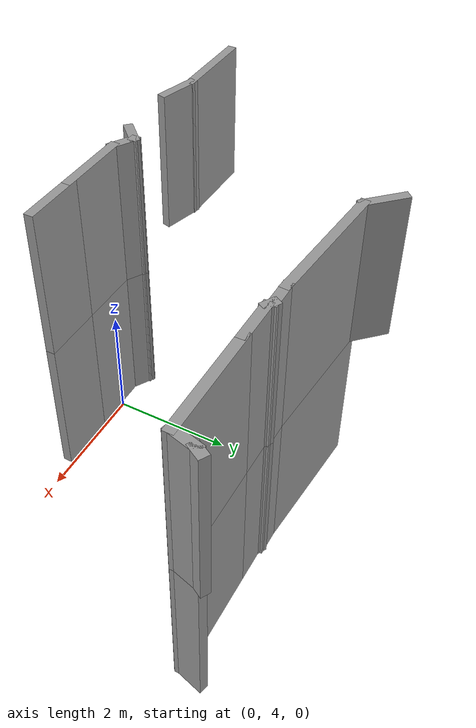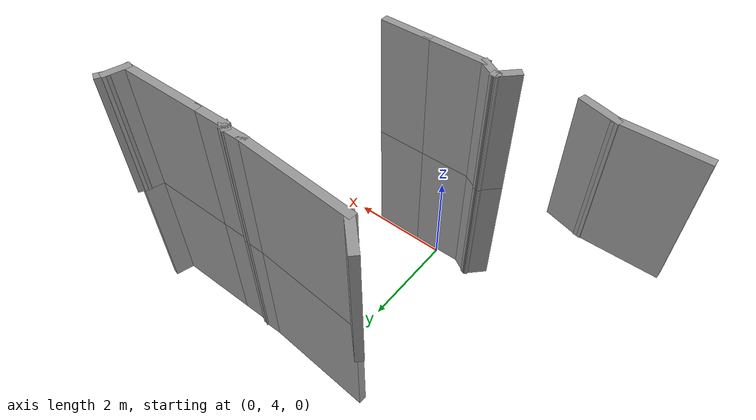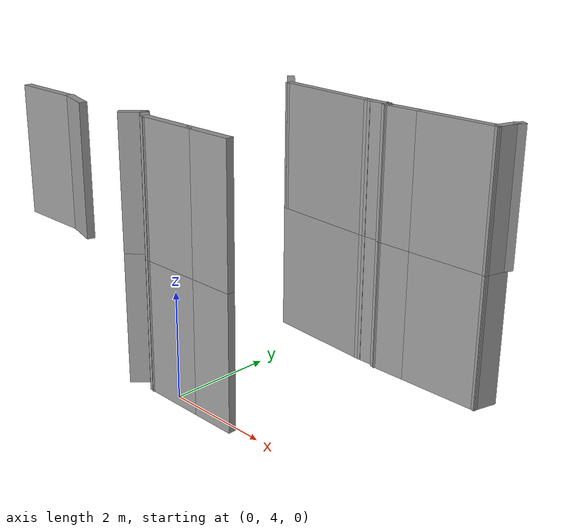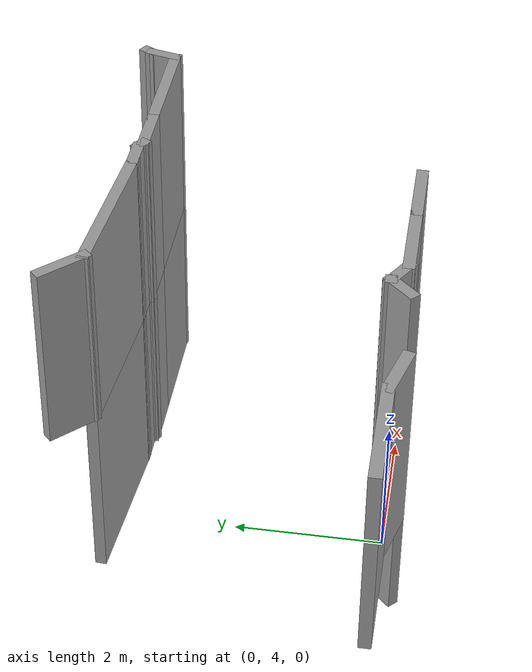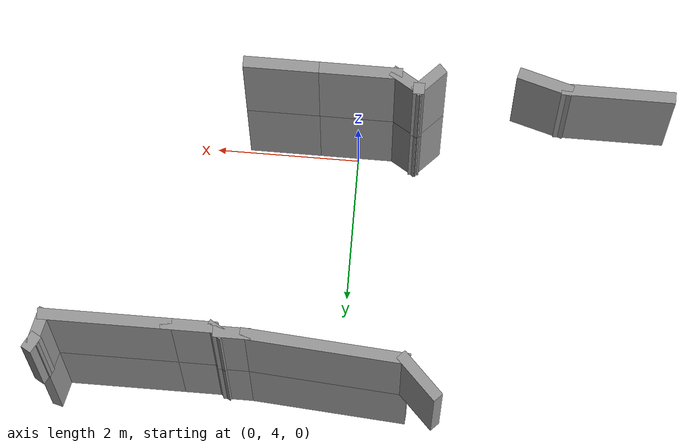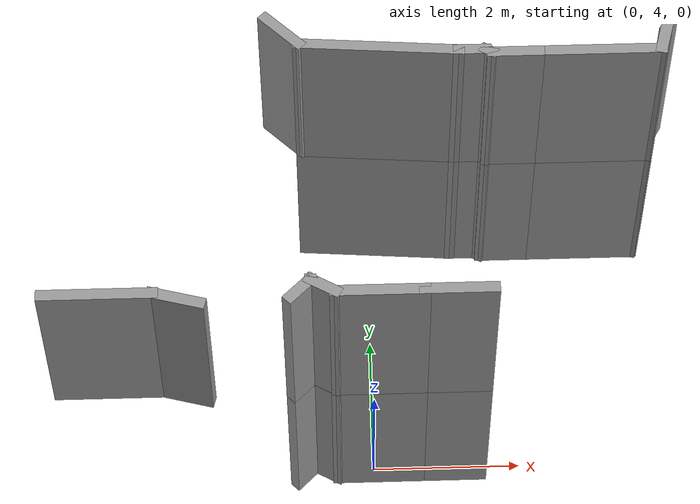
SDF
<sdf version="1.7">
 <model name="EnvDC01">
  <link name="Wall_154">
   <pose>1.03564 3.88138 0 0 -0 3.14159</pose>
   <visual name="Wall_154_Visual">
    <pose>0 0 1.25 0 -0 0</pose>
    <geometry><box><size>1 0.15 2.5</size></box></geometry>
    <material>
     <script><uri>file://media/materials/scripts/gazebo.material</uri><name>Gazebo/Grey</name></script>
     <ambient>1 1 1 1</ambient>
     <shader type="pixel"/>
    </material>
    <meta><layer>0</layer></meta>
   </visual>
   <collision name="Wall_154_Collision">
    <pose>0 0 1.25 0 -0 0</pose>
    <geometry><box><size>1 0.15 2.5</size></box></geometry>
    <surface>
     <friction>
      <ode><mu>1</mu><mu2>1</mu2><fdir1>0 0 0</fdir1><slip1>0</slip1><slip2>0</slip2></ode>
      <torsional>
       <coefficient>1</coefficient>
       <patch_radius>0</patch_radius>
       <surface_radius>0</surface_radius>
       <use_patch_radius>1</use_patch_radius>
       <ode><slip>0</slip></ode>
      </torsional>
     </friction>
     <bounce><restitution_coefficient>0</restitution_coefficient><threshold>1e+06</threshold></bounce>
     <contact>
      <collide_without_contact>0</collide_without_contact>
      <collide_without_contact_bitmask>1</collide_without_contact_bitmask>
      <collide_bitmask>1</collide_bitmask>
      <ode>
       <soft_cfm>0</soft_cfm>
       <soft_erp>0.2</soft_erp>
       <kp>1e+13</kp>
       <kd>1</kd>
       <max_vel>0.01</max_vel>
       <min_depth>0</min_depth>
      </ode>
      <bullet>
       <split_impulse>1</split_impulse>
       <split_impulse_penetration_threshold>-0.01</split_impulse_penetration_threshold>
       <soft_cfm>0</soft_cfm>
       <soft_erp>0.2</soft_erp>
       <kp>1e+13</kp>
       <kd>1</kd>
      </bullet>
     </contact>
    </surface>
   </collision>
  </link>
  <link name="Wall_155">
   <pose>0.060643 3.88138 0 0 -0 3.14159</pose>
   <visual name="Wall_155_Visual">
    <pose>0 0 1.25 0 -0 0</pose>
    <geometry><box><size>1.25 0.15 2.5</size></box></geometry>
    <material>
     <script><uri>file://media/materials/scripts/gazebo.material</uri><name>Gazebo/Grey</name></script>
     <ambient>1 1 1 1</ambient>
     <shader type="pixel"/>
    </material>
    <meta><layer>0</layer></meta>
   </visual>
   <collision name="Wall_155_Collision">
    <pose>0 0 1.25 0 -0 0</pose>
    <geometry><box><size>1.25 0.15 2.5</size></box></geometry>
    <surface>
     <friction>
      <ode><mu>1</mu><mu2>1</mu2><fdir1>0 0 0</fdir1><slip1>0</slip1><slip2>0</slip2></ode>
      <torsional>
       <coefficient>1</coefficient>
       <patch_radius>0</patch_radius>
       <surface_radius>0</surface_radius>
       <use_patch_radius>1</use_patch_radius>
       <ode><slip>0</slip></ode>
      </torsional>
     </friction>
     <bounce><restitution_coefficient>0</restitution_coefficient><threshold>1e+06</threshold></bounce>
     <contact>
      <collide_without_contact>0</collide_without_contact>
      <collide_without_contact_bitmask>1</collide_without_contact_bitmask>
      <collide_bitmask>1</collide_bitmask>
      <ode>
       <soft_cfm>0</soft_cfm>
       <soft_erp>0.2</soft_erp>
       <kp>1e+13</kp>
       <kd>1</kd>
       <max_vel>0.01</max_vel>
       <min_depth>0</min_depth>
      </ode>
      <bullet>
       <split_impulse>1</split_impulse>
       <split_impulse_penetration_threshold>-0.01</split_impulse_penetration_threshold>
       <soft_cfm>0</soft_cfm>
       <soft_erp>0.2</soft_erp>
       <kp>1e+13</kp>
       <kd>1</kd>
      </bullet>
     </contact>
    </surface>
   </collision>
  </link>
  <link name="Wall_156">
   <pose>-0.640912 3.96888 0 0 -0 2.61799</pose>
   <visual name="Wall_156_Visual">
    <pose>0 0 1.25 0 -0 0</pose>
    <geometry><box><size>0.5 0.15 2.5</size></box></geometry>
    <material>
     <script><uri>file://media/materials/scripts/gazebo.material</uri><name>Gazebo/Grey</name></script>
     <ambient>1 1 1 1</ambient>
     <shader type="pixel"/>
    </material>
    <meta><layer>0</layer></meta>
   </visual>
   <collision name="Wall_156_Collision">
    <pose>0 0 1.25 0 -0 0</pose>
    <geometry><box><size>0.5 0.15 2.5</size></box></geometry>
    <surface>
     <friction>
      <ode><mu>1</mu><mu2>1</mu2><fdir1>0 0 0</fdir1><slip1>0</slip1><slip2>0</slip2></ode>
      <torsional>
       <coefficient>1</coefficient>
       <patch_radius>0</patch_radius>
       <surface_radius>0</surface_radius>
       <use_patch_radius>1</use_patch_radius>
       <ode><slip>0</slip></ode>
      </torsional>
     </friction>
     <bounce><restitution_coefficient>0</restitution_coefficient><threshold>1e+06</threshold></bounce>
     <contact>
      <collide_without_contact>0</collide_without_contact>
      <collide_without_contact_bitmask>1</collide_without_contact_bitmask>
      <collide_bitmask>1</collide_bitmask>
      <ode>
       <soft_cfm>0</soft_cfm>
       <soft_erp>0.2</soft_erp>
       <kp>1e+13</kp>
       <kd>1</kd>
       <max_vel>0.01</max_vel>
       <min_depth>0</min_depth>
      </ode>
      <bullet>
       <split_impulse>1</split_impulse>
       <split_impulse_penetration_threshold>-0.01</split_impulse_penetration_threshold>
       <soft_cfm>0</soft_cfm>
       <soft_erp>0.2</soft_erp>
       <kp>1e+13</kp>
       <kd>1</kd>
      </bullet>
     </contact>
    </surface>
   </collision>
  </link>
  <link name="Wall_157">
   <pose>-0.792467 4.05638 0 0 -0 0</pose>
   <visual name="Wall_157_Visual">
    <pose>0 0 1.25 0 -0 0</pose>
    <geometry><box><size>0.15 0.15 2.5</size></box></geometry>
    <material>
     <script><uri>file://media/materials/scripts/gazebo.material</uri><name>Gazebo/Grey</name></script>
     <ambient>1 1 1 1</ambient>
     <shader type="pixel"/>
    </material>
    <meta><layer>0</layer></meta>
   </visual>
   <collision name="Wall_157_Collision">
    <pose>0 0 1.25 0 -0 0</pose>
    <geometry><box><size>0.15 0.15 2.5</size></box></geometry>
    <surface>
     <friction>
      <ode><mu>1</mu><mu2>1</mu2><fdir1>0 0 0</fdir1><slip1>0</slip1><slip2>0</slip2></ode>
      <torsional>
       <coefficient>1</coefficient>
       <patch_radius>0</patch_radius>
       <surface_radius>0</surface_radius>
       <use_patch_radius>1</use_patch_radius>
       <ode><slip>0</slip></ode>
      </torsional>
     </friction>
     <bounce><restitution_coefficient>0</restitution_coefficient><threshold>1e+06</threshold></bounce>
     <contact>
      <collide_without_contact>0</collide_without_contact>
      <collide_without_contact_bitmask>1</collide_without_contact_bitmask>
      <collide_bitmask>1</collide_bitmask>
      <ode>
       <soft_cfm>0</soft_cfm>
       <soft_erp>0.2</soft_erp>
       <kp>1e+13</kp>
       <kd>1</kd>
       <max_vel>0.01</max_vel>
       <min_depth>0</min_depth>
      </ode>
      <bullet>
       <split_impulse>1</split_impulse>
       <split_impulse_penetration_threshold>-0.01</split_impulse_penetration_threshold>
       <soft_cfm>0</soft_cfm>
       <soft_erp>0.2</soft_erp>
       <kp>1e+13</kp>
       <kd>1</kd>
      </bullet>
     </contact>
    </surface>
   </collision>
  </link>
  <link name="Wall_158">
   <pose>-0.91621 3.93263 0 0 0 -2.35619</pose>
   <visual name="Wall_158_Visual">
    <pose>0 0 1.25 0 -0 0</pose>
    <geometry><box><size>0.5 0.15 2.5</size></box></geometry>
    <material>
     <script><uri>file://media/materials/scripts/gazebo.material</uri><name>Gazebo/Grey</name></script>
     <ambient>1 1 1 1</ambient>
     <shader type="pixel"/>
    </material>
    <meta><layer>0</layer></meta>
   </visual>
   <collision name="Wall_158_Collision">
    <pose>0 0 1.25 0 -0 0</pose>
    <geometry><box><size>0.5 0.15 2.5</size></box></geometry>
    <surface>
     <friction>
      <ode><mu>1</mu><mu2>1</mu2><fdir1>0 0 0</fdir1><slip1>0</slip1><slip2>0</slip2></ode>
      <torsional>
       <coefficient>1</coefficient>
       <patch_radius>0</patch_radius>
       <surface_radius>0</surface_radius>
       <use_patch_radius>1</use_patch_radius>
       <ode><slip>0</slip></ode>
      </torsional>
     </friction>
     <bounce><restitution_coefficient>0</restitution_coefficient><threshold>1e+06</threshold></bounce>
     <contact>
      <collide_without_contact>0</collide_without_contact>
      <collide_without_contact_bitmask>1</collide_without_contact_bitmask>
      <collide_bitmask>1</collide_bitmask>
      <ode>
       <soft_cfm>0</soft_cfm>
       <soft_erp>0.2</soft_erp>
       <kp>1e+13</kp>
       <kd>1</kd>
       <max_vel>0.01</max_vel>
       <min_depth>0</min_depth>
      </ode>
      <bullet>
       <split_impulse>1</split_impulse>
       <split_impulse_penetration_threshold>-0.01</split_impulse_penetration_threshold>
       <soft_cfm>0</soft_cfm>
       <soft_erp>0.2</soft_erp>
       <kp>1e+13</kp>
       <kd>1</kd>
      </bullet>
     </contact>
    </surface>
   </collision>
  </link>
  <link name="Wall_289">
   <pose>3.94617 7.82295 2.5 0 0 -2.0944</pose>
   <visual name="Wall_289_Visual">
    <pose>0 0 1.25 0 -0 0</pose>
    <geometry><box><size>0.25 0.15 2.5</size></box></geometry>
    <material>
     <script><uri>file://media/materials/scripts/gazebo.material</uri><name>Gazebo/Grey</name></script>
     <ambient>1 1 1 1</ambient>
     <shader type="pixel"/>
    </material>
    <meta><layer>1</layer></meta>
   </visual>
   <collision name="Wall_289_Collision">
    <pose>0 0 1.25 0 -0 0</pose>
    <geometry><box><size>0.25 0.15 2.5</size></box></geometry>
    <surface>
     <friction>
      <ode><mu>1</mu><mu2>1</mu2><fdir1>0 0 0</fdir1><slip1>0</slip1><slip2>0</slip2></ode>
      <torsional>
       <coefficient>1</coefficient>
       <patch_radius>0</patch_radius>
       <surface_radius>0</surface_radius>
       <use_patch_radius>1</use_patch_radius>
       <ode><slip>0</slip></ode>
      </torsional>
     </friction>
     <bounce><restitution_coefficient>0</restitution_coefficient><threshold>1e+06</threshold></bounce>
     <contact>
      <collide_without_contact>0</collide_without_contact>
      <collide_without_contact_bitmask>1</collide_without_contact_bitmask>
      <collide_bitmask>1</collide_bitmask>
      <ode>
       <soft_cfm>0</soft_cfm>
       <soft_erp>0.2</soft_erp>
       <kp>1e+13</kp>
       <kd>1</kd>
       <max_vel>0.01</max_vel>
       <min_depth>0</min_depth>
      </ode>
      <bullet>
       <split_impulse>1</split_impulse>
       <split_impulse_penetration_threshold>-0.01</split_impulse_penetration_threshold>
       <soft_cfm>0</soft_cfm>
       <soft_erp>0.2</soft_erp>
       <kp>1e+13</kp>
       <kd>1</kd>
      </bullet>
     </contact>
    </surface>
   </collision>
  </link>
  <link name="Wall_290">
   <pose>3.87588 7.61061 2.5 0 0 -1.8326</pose>
   <visual name="Wall_290_Visual">
    <pose>0 0 1.25 0 -0 0</pose>
    <geometry><box><size>0.5 0.15 2.5</size></box></geometry>
    <material>
     <script><uri>file://media/materials/scripts/gazebo.material</uri><name>Gazebo/Grey</name></script>
     <ambient>1 1 1 1</ambient>
     <shader type="pixel"/>
    </material>
    <meta><layer>1</layer></meta>
   </visual>
   <collision name="Wall_290_Collision">
    <pose>0 0 1.25 0 -0 0</pose>
    <geometry><box><size>0.5 0.15 2.5</size></box></geometry>
    <surface>
     <friction>
      <ode><mu>1</mu><mu2>1</mu2><fdir1>0 0 0</fdir1><slip1>0</slip1><slip2>0</slip2></ode>
      <torsional>
       <coefficient>1</coefficient>
       <patch_radius>0</patch_radius>
       <surface_radius>0</surface_radius>
       <use_patch_radius>1</use_patch_radius>
       <ode><slip>0</slip></ode>
      </torsional>
     </friction>
     <bounce><restitution_coefficient>0</restitution_coefficient><threshold>1e+06</threshold></bounce>
     <contact>
      <collide_without_contact>0</collide_without_contact>
      <collide_without_contact_bitmask>1</collide_without_contact_bitmask>
      <collide_bitmask>1</collide_bitmask>
      <ode>
       <soft_cfm>0</soft_cfm>
       <soft_erp>0.2</soft_erp>
       <kp>1e+13</kp>
       <kd>1</kd>
       <max_vel>0.01</max_vel>
       <min_depth>0</min_depth>
      </ode>
      <bullet>
       <split_impulse>1</split_impulse>
       <split_impulse_penetration_threshold>-0.01</split_impulse_penetration_threshold>
       <soft_cfm>0</soft_cfm>
       <soft_erp>0.2</soft_erp>
       <kp>1e+13</kp>
       <kd>1</kd>
      </bullet>
     </contact>
    </surface>
   </collision>
  </link>
  <link name="Wall_291">
   <pose>3.03058 7.44158 2.5 0 -0 3.14159</pose>
   <visual name="Wall_291_Visual">
    <pose>0 0 1.25 0 -0 0</pose>
    <geometry><box><size>1.75 0.15 2.5</size></box></geometry>
    <material>
     <script><uri>file://media/materials/scripts/gazebo.material</uri><name>Gazebo/Grey</name></script>
     <ambient>1 1 1 1</ambient>
     <shader type="pixel"/>
    </material>
    <meta><layer>1</layer></meta>
   </visual>
   <collision name="Wall_291_Collision">
    <pose>0 0 1.25 0 -0 0</pose>
    <geometry><box><size>1.75 0.15 2.5</size></box></geometry>
    <surface>
     <friction>
      <ode><mu>1</mu><mu2>1</mu2><fdir1>0 0 0</fdir1><slip1>0</slip1><slip2>0</slip2></ode>
      <torsional>
       <coefficient>1</coefficient>
       <patch_radius>0</patch_radius>
       <surface_radius>0</surface_radius>
       <use_patch_radius>1</use_patch_radius>
       <ode><slip>0</slip></ode>
      </torsional>
     </friction>
     <bounce><restitution_coefficient>0</restitution_coefficient><threshold>1e+06</threshold></bounce>
     <contact>
      <collide_without_contact>0</collide_without_contact>
      <collide_without_contact_bitmask>1</collide_without_contact_bitmask>
      <collide_bitmask>1</collide_bitmask>
      <ode>
       <soft_cfm>0</soft_cfm>
       <soft_erp>0.2</soft_erp>
       <kp>1e+13</kp>
       <kd>1</kd>
       <max_vel>0.01</max_vel>
       <min_depth>0</min_depth>
      </ode>
      <bullet>
       <split_impulse>1</split_impulse>
       <split_impulse_penetration_threshold>-0.01</split_impulse_penetration_threshold>
       <soft_cfm>0</soft_cfm>
       <soft_erp>0.2</soft_erp>
       <kp>1e+13</kp>
       <kd>1</kd>
      </bullet>
     </contact>
    </surface>
   </collision>
  </link>
  <link name="Wall_292">
   <pose>1.93058 7.44158 2.5 0 -0 3.14159</pose>
   <visual name="Wall_292_Visual">
    <pose>0 0 1.25 0 -0 0</pose>
    <geometry><box><size>0.75 0.15 2.5</size></box></geometry>
    <material>
     <script><uri>file://media/materials/scripts/gazebo.material</uri><name>Gazebo/Grey</name></script>
     <ambient>1 1 1 1</ambient>
     <shader type="pixel"/>
    </material>
    <meta><layer>1</layer></meta>
   </visual>
   <collision name="Wall_292_Collision">
    <pose>0 0 1.25 0 -0 0</pose>
    <geometry><box><size>0.75 0.15 2.5</size></box></geometry>
    <surface>
     <friction>
      <ode><mu>1</mu><mu2>1</mu2><fdir1>0 0 0</fdir1><slip1>0</slip1><slip2>0</slip2></ode>
      <torsional>
       <coefficient>1</coefficient>
       <patch_radius>0</patch_radius>
       <surface_radius>0</surface_radius>
       <use_patch_radius>1</use_patch_radius>
       <ode><slip>0</slip></ode>
      </torsional>
     </friction>
     <bounce><restitution_coefficient>0</restitution_coefficient><threshold>1e+06</threshold></bounce>
     <contact>
      <collide_without_contact>0</collide_without_contact>
      <collide_without_contact_bitmask>1</collide_without_contact_bitmask>
      <collide_bitmask>1</collide_bitmask>
      <ode>
       <soft_cfm>0</soft_cfm>
       <soft_erp>0.2</soft_erp>
       <kp>1e+13</kp>
       <kd>1</kd>
       <max_vel>0.01</max_vel>
       <min_depth>0</min_depth>
      </ode>
      <bullet>
       <split_impulse>1</split_impulse>
       <split_impulse_penetration_threshold>-0.01</split_impulse_penetration_threshold>
       <soft_cfm>0</soft_cfm>
       <soft_erp>0.2</soft_erp>
       <kp>1e+13</kp>
       <kd>1</kd>
      </bullet>
     </contact>
    </surface>
   </collision>
  </link>
  <link name="Wall_293">
   <pose>1.58728 7.46658 2.5 0 -0 2.61799</pose>
   <visual name="Wall_293_Visual">
    <pose>0 0 1.25 0 -0 0</pose>
    <geometry><box><size>0.25 0.15 2.5</size></box></geometry>
    <material>
     <script><uri>file://media/materials/scripts/gazebo.material</uri><name>Gazebo/Grey</name></script>
     <ambient>1 1 1 1</ambient>
     <shader type="pixel"/>
    </material>
    <meta><layer>1</layer></meta>
   </visual>
   <collision name="Wall_293_Collision">
    <pose>0 0 1.25 0 -0 0</pose>
    <geometry><box><size>0.25 0.15 2.5</size></box></geometry>
    <surface>
     <friction>
      <ode><mu>1</mu><mu2>1</mu2><fdir1>0 0 0</fdir1><slip1>0</slip1><slip2>0</slip2></ode>
      <torsional>
       <coefficient>1</coefficient>
       <patch_radius>0</patch_radius>
       <surface_radius>0</surface_radius>
       <use_patch_radius>1</use_patch_radius>
       <ode><slip>0</slip></ode>
      </torsional>
     </friction>
     <bounce><restitution_coefficient>0</restitution_coefficient><threshold>1e+06</threshold></bounce>
     <contact>
      <collide_without_contact>0</collide_without_contact>
      <collide_without_contact_bitmask>1</collide_without_contact_bitmask>
      <collide_bitmask>1</collide_bitmask>
      <ode>
       <soft_cfm>0</soft_cfm>
       <soft_erp>0.2</soft_erp>
       <kp>1e+13</kp>
       <kd>1</kd>
       <max_vel>0.01</max_vel>
       <min_depth>0</min_depth>
      </ode>
      <bullet>
       <split_impulse>1</split_impulse>
       <split_impulse_penetration_threshold>-0.01</split_impulse_penetration_threshold>
       <soft_cfm>0</soft_cfm>
       <soft_erp>0.2</soft_erp>
       <kp>1e+13</kp>
       <kd>1</kd>
      </bullet>
     </contact>
    </surface>
   </collision>
  </link>
  <link name="Wall_294">
   <pose>1.36898 7.49158 2.5 0 -0 3.14159</pose>
   <visual name="Wall_294_Visual">
    <pose>0 0 1.25 0 -0 0</pose>
    <geometry><box><size>0.5 0.15 2.5</size></box></geometry>
    <material>
     <script><uri>file://media/materials/scripts/gazebo.material</uri><name>Gazebo/Grey</name></script>
     <ambient>1 1 1 1</ambient>
     <shader type="pixel"/>
    </material>
    <meta><layer>1</layer></meta>
   </visual>
   <collision name="Wall_294_Collision">
    <pose>0 0 1.25 0 -0 0</pose>
    <geometry><box><size>0.5 0.15 2.5</size></box></geometry>
    <surface>
     <friction>
      <ode><mu>1</mu><mu2>1</mu2><fdir1>0 0 0</fdir1><slip1>0</slip1><slip2>0</slip2></ode>
      <torsional>
       <coefficient>1</coefficient>
       <patch_radius>0</patch_radius>
       <surface_radius>0</surface_radius>
       <use_patch_radius>1</use_patch_radius>
       <ode><slip>0</slip></ode>
      </torsional>
     </friction>
     <bounce><restitution_coefficient>0</restitution_coefficient><threshold>1e+06</threshold></bounce>
     <contact>
      <collide_without_contact>0</collide_without_contact>
      <collide_without_contact_bitmask>1</collide_without_contact_bitmask>
      <collide_bitmask>1</collide_bitmask>
      <ode>
       <soft_cfm>0</soft_cfm>
       <soft_erp>0.2</soft_erp>
       <kp>1e+13</kp>
       <kd>1</kd>
       <max_vel>0.01</max_vel>
       <min_depth>0</min_depth>
      </ode>
      <bullet>
       <split_impulse>1</split_impulse>
       <split_impulse_penetration_threshold>-0.01</split_impulse_penetration_threshold>
       <soft_cfm>0</soft_cfm>
       <soft_erp>0.2</soft_erp>
       <kp>1e+13</kp>
       <kd>1</kd>
      </bullet>
     </contact>
    </surface>
   </collision>
  </link>
  <link name="Wall_295">
   <pose>0.154204 7.56922 2.5 0 -0 3.06706</pose>
   <visual name="Wall_295_Visual">
    <pose>0 0 1.25 0 -0 0</pose>
    <geometry><box><size>2.23535 0.15 2.5</size></box></geometry>
    <material>
     <script><uri>file://media/materials/scripts/gazebo.material</uri><name>Gazebo/Grey</name></script>
     <ambient>1 1 1 1</ambient>
     <shader type="pixel"/>
    </material>
    <meta><layer>1</layer></meta>
   </visual>
   <collision name="Wall_295_Collision">
    <pose>0 0 1.25 0 -0 0</pose>
    <geometry><box><size>2.23535 0.15 2.5</size></box></geometry>
    <surface>
     <friction>
      <ode><mu>1</mu><mu2>1</mu2><fdir1>0 0 0</fdir1><slip1>0</slip1><slip2>0</slip2></ode>
      <torsional>
       <coefficient>1</coefficient>
       <patch_radius>0</patch_radius>
       <surface_radius>0</surface_radius>
       <use_patch_radius>1</use_patch_radius>
       <ode><slip>0</slip></ode>
      </torsional>
     </friction>
     <bounce><restitution_coefficient>0</restitution_coefficient><threshold>1e+06</threshold></bounce>
     <contact>
      <collide_without_contact>0</collide_without_contact>
      <collide_without_contact_bitmask>1</collide_without_contact_bitmask>
      <collide_bitmask>1</collide_bitmask>
      <ode>
       <soft_cfm>0</soft_cfm>
       <soft_erp>0.2</soft_erp>
       <kp>1e+13</kp>
       <kd>1</kd>
       <max_vel>0.01</max_vel>
       <min_depth>0</min_depth>
      </ode>
      <bullet>
       <split_impulse>1</split_impulse>
       <split_impulse_penetration_threshold>-0.01</split_impulse_penetration_threshold>
       <soft_cfm>0</soft_cfm>
       <soft_erp>0.2</soft_erp>
       <kp>1e+13</kp>
       <kd>1</kd>
      </bullet>
     </contact>
    </surface>
   </collision>
  </link>
  <link name="Wall_296">
   <pose>-1.09771 7.859 2.5 0 -0 2.35619</pose>
   <visual name="Wall_296_Visual">
    <pose>0 0 1.25 0 -0 0</pose>
    <geometry><box><size>0.75 0.15 2.5</size></box></geometry>
    <material>
     <script><uri>file://media/materials/scripts/gazebo.material</uri><name>Gazebo/Grey</name></script>
     <ambient>1 1 1 1</ambient>
     <shader type="pixel"/>
    </material>
    <meta><layer>1</layer></meta>
   </visual>
   <collision name="Wall_296_Collision">
    <pose>0 0 1.25 0 -0 0</pose>
    <geometry><box><size>0.75 0.15 2.5</size></box></geometry>
    <surface>
     <friction>
      <ode><mu>1</mu><mu2>1</mu2><fdir1>0 0 0</fdir1><slip1>0</slip1><slip2>0</slip2></ode>
      <torsional>
       <coefficient>1</coefficient>
       <patch_radius>0</patch_radius>
       <surface_radius>0</surface_radius>
       <use_patch_radius>1</use_patch_radius>
       <ode><slip>0</slip></ode>
      </torsional>
     </friction>
     <bounce><restitution_coefficient>0</restitution_coefficient><threshold>1e+06</threshold></bounce>
     <contact>
      <collide_without_contact>0</collide_without_contact>
      <collide_without_contact_bitmask>1</collide_without_contact_bitmask>
      <collide_bitmask>1</collide_bitmask>
      <ode>
       <soft_cfm>0</soft_cfm>
       <soft_erp>0.2</soft_erp>
       <kp>1e+13</kp>
       <kd>1</kd>
       <max_vel>0.01</max_vel>
       <min_depth>0</min_depth>
      </ode>
      <bullet>
       <split_impulse>1</split_impulse>
       <split_impulse_penetration_threshold>-0.01</split_impulse_penetration_threshold>
       <soft_cfm>0</soft_cfm>
       <soft_erp>0.2</soft_erp>
       <kp>1e+13</kp>
       <kd>1</kd>
      </bullet>
     </contact>
    </surface>
   </collision>
  </link>
  <link name="Wall_343">
   <pose>1.03564 3.88138 2.5 0 -0 3.14159</pose>
   <visual name="Wall_343_Visual">
    <pose>0 0 1.25 0 -0 0</pose>
    <geometry><box><size>1 0.15 2.5</size></box></geometry>
    <material>
     <script><uri>file://media/materials/scripts/gazebo.material</uri><name>Gazebo/Grey</name></script>
     <ambient>1 1 1 1</ambient>
     <shader type="pixel"/>
    </material>
    <meta><layer>1</layer></meta>
   </visual>
   <collision name="Wall_343_Collision">
    <pose>0 0 1.25 0 -0 0</pose>
    <geometry><box><size>1 0.15 2.5</size></box></geometry>
    <surface>
     <friction>
      <ode><mu>1</mu><mu2>1</mu2><fdir1>0 0 0</fdir1><slip1>0</slip1><slip2>0</slip2></ode>
      <torsional>
       <coefficient>1</coefficient>
       <patch_radius>0</patch_radius>
       <surface_radius>0</surface_radius>
       <use_patch_radius>1</use_patch_radius>
       <ode><slip>0</slip></ode>
      </torsional>
     </friction>
     <bounce><restitution_coefficient>0</restitution_coefficient><threshold>1e+06</threshold></bounce>
     <contact>
      <collide_without_contact>0</collide_without_contact>
      <collide_without_contact_bitmask>1</collide_without_contact_bitmask>
      <collide_bitmask>1</collide_bitmask>
      <ode>
       <soft_cfm>0</soft_cfm>
       <soft_erp>0.2</soft_erp>
       <kp>1e+13</kp>
       <kd>1</kd>
       <max_vel>0.01</max_vel>
       <min_depth>0</min_depth>
      </ode>
      <bullet>
       <split_impulse>1</split_impulse>
       <split_impulse_penetration_threshold>-0.01</split_impulse_penetration_threshold>
       <soft_cfm>0</soft_cfm>
       <soft_erp>0.2</soft_erp>
       <kp>1e+13</kp>
       <kd>1</kd>
      </bullet>
     </contact>
    </surface>
   </collision>
  </link>
  <link name="Wall_344">
   <pose>0.060642 3.88138 2.5 0 -0 3.14159</pose>
   <visual name="Wall_344_Visual">
    <pose>0 0 1.25 0 -0 0</pose>
    <geometry><box><size>1.25 0.15 2.5</size></box></geometry>
    <material>
     <script><uri>file://media/materials/scripts/gazebo.material</uri><name>Gazebo/Grey</name></script>
     <ambient>1 1 1 1</ambient>
     <shader type="pixel"/>
    </material>
    <meta><layer>1</layer></meta>
   </visual>
   <collision name="Wall_344_Collision">
    <pose>0 0 1.25 0 -0 0</pose>
    <geometry><box><size>1.25 0.15 2.5</size></box></geometry>
    <surface>
     <friction>
      <ode><mu>1</mu><mu2>1</mu2><fdir1>0 0 0</fdir1><slip1>0</slip1><slip2>0</slip2></ode>
      <torsional>
       <coefficient>1</coefficient>
       <patch_radius>0</patch_radius>
       <surface_radius>0</surface_radius>
       <use_patch_radius>1</use_patch_radius>
       <ode><slip>0</slip></ode>
      </torsional>
     </friction>
     <bounce><restitution_coefficient>0</restitution_coefficient><threshold>1e+06</threshold></bounce>
     <contact>
      <collide_without_contact>0</collide_without_contact>
      <collide_without_contact_bitmask>1</collide_without_contact_bitmask>
      <collide_bitmask>1</collide_bitmask>
      <ode>
       <soft_cfm>0</soft_cfm>
       <soft_erp>0.2</soft_erp>
       <kp>1e+13</kp>
       <kd>1</kd>
       <max_vel>0.01</max_vel>
       <min_depth>0</min_depth>
      </ode>
      <bullet>
       <split_impulse>1</split_impulse>
       <split_impulse_penetration_threshold>-0.01</split_impulse_penetration_threshold>
       <soft_cfm>0</soft_cfm>
       <soft_erp>0.2</soft_erp>
       <kp>1e+13</kp>
       <kd>1</kd>
      </bullet>
     </contact>
    </surface>
   </collision>
  </link>
  <link name="Wall_345">
   <pose>-0.640912 3.96888 2.5 0 -0 2.61799</pose>
   <visual name="Wall_345_Visual">
    <pose>0 0 1.25 0 -0 0</pose>
    <geometry><box><size>0.5 0.15 2.5</size></box></geometry>
    <material>
     <script><uri>file://media/materials/scripts/gazebo.material</uri><name>Gazebo/Grey</name></script>
     <ambient>1 1 1 1</ambient>
     <shader type="pixel"/>
    </material>
    <meta><layer>1</layer></meta>
   </visual>
   <collision name="Wall_345_Collision">
    <pose>0 0 1.25 0 -0 0</pose>
    <geometry><box><size>0.5 0.15 2.5</size></box></geometry>
    <surface>
     <friction>
      <ode><mu>1</mu><mu2>1</mu2><fdir1>0 0 0</fdir1><slip1>0</slip1><slip2>0</slip2></ode>
      <torsional>
       <coefficient>1</coefficient>
       <patch_radius>0</patch_radius>
       <surface_radius>0</surface_radius>
       <use_patch_radius>1</use_patch_radius>
       <ode><slip>0</slip></ode>
      </torsional>
     </friction>
     <bounce><restitution_coefficient>0</restitution_coefficient><threshold>1e+06</threshold></bounce>
     <contact>
      <collide_without_contact>0</collide_without_contact>
      <collide_without_contact_bitmask>1</collide_without_contact_bitmask>
      <collide_bitmask>1</collide_bitmask>
      <ode>
       <soft_cfm>0</soft_cfm>
       <soft_erp>0.2</soft_erp>
       <kp>1e+13</kp>
       <kd>1</kd>
       <max_vel>0.01</max_vel>
       <min_depth>0</min_depth>
      </ode>
      <bullet>
       <split_impulse>1</split_impulse>
       <split_impulse_penetration_threshold>-0.01</split_impulse_penetration_threshold>
       <soft_cfm>0</soft_cfm>
       <soft_erp>0.2</soft_erp>
       <kp>1e+13</kp>
       <kd>1</kd>
      </bullet>
     </contact>
    </surface>
   </collision>
  </link>
  <link name="Wall_346">
   <pose>-0.792467 4.05638 2.5 0 -0 0</pose>
   <visual name="Wall_346_Visual">
    <pose>0 0 1.25 0 -0 0</pose>
    <geometry><box><size>0.15 0.15 2.5</size></box></geometry>
    <material>
     <script><uri>file://media/materials/scripts/gazebo.material</uri><name>Gazebo/Grey</name></script>
     <ambient>1 1 1 1</ambient>
     <shader type="pixel"/>
    </material>
    <meta><layer>1</layer></meta>
   </visual>
   <collision name="Wall_346_Collision">
    <pose>0 0 1.25 0 -0 0</pose>
    <geometry><box><size>0.15 0.15 2.5</size></box></geometry>
    <surface>
     <friction>
      <ode><mu>1</mu><mu2>1</mu2><fdir1>0 0 0</fdir1><slip1>0</slip1><slip2>0</slip2></ode>
      <torsional>
       <coefficient>1</coefficient>
       <patch_radius>0</patch_radius>
       <surface_radius>0</surface_radius>
       <use_patch_radius>1</use_patch_radius>
       <ode><slip>0</slip></ode>
      </torsional>
     </friction>
     <bounce><restitution_coefficient>0</restitution_coefficient><threshold>1e+06</threshold></bounce>
     <contact>
      <collide_without_contact>0</collide_without_contact>
      <collide_without_contact_bitmask>1</collide_without_contact_bitmask>
      <collide_bitmask>1</collide_bitmask>
      <ode>
       <soft_cfm>0</soft_cfm>
       <soft_erp>0.2</soft_erp>
       <kp>1e+13</kp>
       <kd>1</kd>
       <max_vel>0.01</max_vel>
       <min_depth>0</min_depth>
      </ode>
      <bullet>
       <split_impulse>1</split_impulse>
       <split_impulse_penetration_threshold>-0.01</split_impulse_penetration_threshold>
       <soft_cfm>0</soft_cfm>
       <soft_erp>0.2</soft_erp>
       <kp>1e+13</kp>
       <kd>1</kd>
      </bullet>
     </contact>
    </surface>
   </collision>
  </link>
  <link name="Wall_347">
   <pose>-0.91621 3.93263 2.5 0 0 -2.35619</pose>
   <visual name="Wall_347_Visual">
    <pose>0 0 1.25 0 -0 0</pose>
    <geometry><box><size>0.5 0.15 2.5</size></box></geometry>
    <material>
     <script><uri>file://media/materials/scripts/gazebo.material</uri><name>Gazebo/Grey</name></script>
     <ambient>1 1 1 1</ambient>
     <shader type="pixel"/>
    </material>
    <meta><layer>1</layer></meta>
   </visual>
   <collision name="Wall_347_Collision">
    <pose>0 0 1.25 0 -0 0</pose>
    <geometry><box><size>0.5 0.15 2.5</size></box></geometry>
    <surface>
     <friction>
      <ode><mu>1</mu><mu2>1</mu2><fdir1>0 0 0</fdir1><slip1>0</slip1><slip2>0</slip2></ode>
      <torsional>
       <coefficient>1</coefficient>
       <patch_radius>0</patch_radius>
       <surface_radius>0</surface_radius>
       <use_patch_radius>1</use_patch_radius>
       <ode><slip>0</slip></ode>
      </torsional>
     </friction>
     <bounce><restitution_coefficient>0</restitution_coefficient><threshold>1e+06</threshold></bounce>
     <contact>
      <collide_without_contact>0</collide_without_contact>
      <collide_without_contact_bitmask>1</collide_without_contact_bitmask>
      <collide_bitmask>1</collide_bitmask>
      <ode>
       <soft_cfm>0</soft_cfm>
       <soft_erp>0.2</soft_erp>
       <kp>1e+13</kp>
       <kd>1</kd>
       <max_vel>0.01</max_vel>
       <min_depth>0</min_depth>
      </ode>
      <bullet>
       <split_impulse>1</split_impulse>
       <split_impulse_penetration_threshold>-0.01</split_impulse_penetration_threshold>
       <soft_cfm>0</soft_cfm>
       <soft_erp>0.2</soft_erp>
       <kp>1e+13</kp>
       <kd>1</kd>
      </bullet>
     </contact>
    </surface>
   </collision>
  </link>
  <link name="Wall_352">
   <pose>-2.44248 3.83653 2.5 0 -0 2.87979</pose>
   <visual name="Wall_352_Visual">
    <pose>0 0 1.25 0 -0 0</pose>
    <geometry><box><size>0.75 0.15 2.5</size></box></geometry>
    <material>
     <script><uri>file://media/materials/scripts/gazebo.material</uri><name>Gazebo/Grey</name></script>
     <ambient>1 1 1 1</ambient>
     <shader type="pixel"/>
    </material>
    <meta><layer>1</layer></meta>
   </visual>
   <collision name="Wall_352_Collision">
    <pose>0 0 1.25 0 -0 0</pose>
    <geometry><box><size>0.75 0.15 2.5</size></box></geometry>
    <surface>
     <friction>
      <ode><mu>1</mu><mu2>1</mu2><fdir1>0 0 0</fdir1><slip1>0</slip1><slip2>0</slip2></ode>
      <torsional>
       <coefficient>1</coefficient>
       <patch_radius>0</patch_radius>
       <surface_radius>0</surface_radius>
       <use_patch_radius>1</use_patch_radius>
       <ode><slip>0</slip></ode>
      </torsional>
     </friction>
     <bounce><restitution_coefficient>0</restitution_coefficient><threshold>1e+06</threshold></bounce>
     <contact>
      <collide_without_contact>0</collide_without_contact>
      <collide_without_contact_bitmask>1</collide_without_contact_bitmask>
      <collide_bitmask>1</collide_bitmask>
      <ode>
       <soft_cfm>0</soft_cfm>
       <soft_erp>0.2</soft_erp>
       <kp>1e+13</kp>
       <kd>1</kd>
       <max_vel>0.01</max_vel>
       <min_depth>0</min_depth>
      </ode>
      <bullet>
       <split_impulse>1</split_impulse>
       <split_impulse_penetration_threshold>-0.01</split_impulse_penetration_threshold>
       <soft_cfm>0</soft_cfm>
       <soft_erp>0.2</soft_erp>
       <kp>1e+13</kp>
       <kd>1</kd>
      </bullet>
     </contact>
    </surface>
   </collision>
  </link>
  <link name="Wall_353">
   <pose>-3.40726 3.91418 2.5 0 -0 3.14159</pose>
   <visual name="Wall_353_Visual">
    <pose>0 0 1.25 0 -0 0</pose>
    <geometry><box><size>1.5 0.15 2.5</size></box></geometry>
    <material>
     <script><uri>file://media/materials/scripts/gazebo.material</uri><name>Gazebo/Grey</name></script>
     <ambient>1 1 1 1</ambient>
     <shader type="pixel"/>
    </material>
    <meta><layer>1</layer></meta>
   </visual>
   <collision name="Wall_353_Collision">
    <pose>0 0 1.25 0 -0 0</pose>
    <geometry><box><size>1.5 0.15 2.5</size></box></geometry>
    <surface>
     <friction>
      <ode><mu>1</mu><mu2>1</mu2><fdir1>0 0 0</fdir1><slip1>0</slip1><slip2>0</slip2></ode>
      <torsional>
       <coefficient>1</coefficient>
       <patch_radius>0</patch_radius>
       <surface_radius>0</surface_radius>
       <use_patch_radius>1</use_patch_radius>
       <ode><slip>0</slip></ode>
      </torsional>
     </friction>
     <bounce><restitution_coefficient>0</restitution_coefficient><threshold>1e+06</threshold></bounce>
     <contact>
      <collide_without_contact>0</collide_without_contact>
      <collide_without_contact_bitmask>1</collide_without_contact_bitmask>
      <collide_bitmask>1</collide_bitmask>
      <ode>
       <soft_cfm>0</soft_cfm>
       <soft_erp>0.2</soft_erp>
       <kp>1e+13</kp>
       <kd>1</kd>
       <max_vel>0.01</max_vel>
       <min_depth>0</min_depth>
      </ode>
      <bullet>
       <split_impulse>1</split_impulse>
       <split_impulse_penetration_threshold>-0.01</split_impulse_penetration_threshold>
       <soft_cfm>0</soft_cfm>
       <soft_erp>0.2</soft_erp>
       <kp>1e+13</kp>
       <kd>1</kd>
      </bullet>
     </contact>
    </surface>
   </collision>
  </link>
  <link name="Wall_78">
   <pose>3.87588 7.61061 0 0 0 -1.8326</pose>
   <visual name="Wall_78_Visual">
    <pose>0 0 1.25 0 -0 0</pose>
    <geometry><box><size>0.5 0.15 2.5</size></box></geometry>
    <material>
     <script><uri>file://media/materials/scripts/gazebo.material</uri><name>Gazebo/Grey</name></script>
     <ambient>1 1 1 1</ambient>
     <shader type="pixel"/>
    </material>
    <meta><layer>0</layer></meta>
   </visual>
   <collision name="Wall_78_Collision">
    <pose>0 0 1.25 0 -0 0</pose>
    <geometry><box><size>0.5 0.15 2.5</size></box></geometry>
    <surface>
     <friction>
      <ode><mu>1</mu><mu2>1</mu2><fdir1>0 0 0</fdir1><slip1>0</slip1><slip2>0</slip2></ode>
      <torsional>
       <coefficient>1</coefficient>
       <patch_radius>0</patch_radius>
       <surface_radius>0</surface_radius>
       <use_patch_radius>1</use_patch_radius>
       <ode><slip>0</slip></ode>
      </torsional>
     </friction>
     <bounce><restitution_coefficient>0</restitution_coefficient><threshold>1e+06</threshold></bounce>
     <contact>
      <collide_without_contact>0</collide_without_contact>
      <collide_without_contact_bitmask>1</collide_without_contact_bitmask>
      <collide_bitmask>1</collide_bitmask>
      <ode>
       <soft_cfm>0</soft_cfm>
       <soft_erp>0.2</soft_erp>
       <kp>1e+13</kp>
       <kd>1</kd>
       <max_vel>0.01</max_vel>
       <min_depth>0</min_depth>
      </ode>
      <bullet>
       <split_impulse>1</split_impulse>
       <split_impulse_penetration_threshold>-0.01</split_impulse_penetration_threshold>
       <soft_cfm>0</soft_cfm>
       <soft_erp>0.2</soft_erp>
       <kp>1e+13</kp>
       <kd>1</kd>
      </bullet>
     </contact>
    </surface>
   </collision>
  </link>
  <link name="Wall_79">
   <pose>3.03058 7.44158 0 0 -0 3.14159</pose>
   <visual name="Wall_79_Visual">
    <pose>0 0 1.25 0 -0 0</pose>
    <geometry><box><size>1.75 0.15 2.5</size></box></geometry>
    <material>
     <script><uri>file://media/materials/scripts/gazebo.material</uri><name>Gazebo/Grey</name></script>
     <ambient>1 1 1 1</ambient>
     <shader type="pixel"/>
    </material>
    <meta><layer>0</layer></meta>
   </visual>
   <collision name="Wall_79_Collision">
    <pose>0 0 1.25 0 -0 0</pose>
    <geometry><box><size>1.75 0.15 2.5</size></box></geometry>
    <surface>
     <friction>
      <ode><mu>1</mu><mu2>1</mu2><fdir1>0 0 0</fdir1><slip1>0</slip1><slip2>0</slip2></ode>
      <torsional>
       <coefficient>1</coefficient>
       <patch_radius>0</patch_radius>
       <surface_radius>0</surface_radius>
       <use_patch_radius>1</use_patch_radius>
       <ode><slip>0</slip></ode>
      </torsional>
     </friction>
     <bounce><restitution_coefficient>0</restitution_coefficient><threshold>1e+06</threshold></bounce>
     <contact>
      <collide_without_contact>0</collide_without_contact>
      <collide_without_contact_bitmask>1</collide_without_contact_bitmask>
      <collide_bitmask>1</collide_bitmask>
      <ode>
       <soft_cfm>0</soft_cfm>
       <soft_erp>0.2</soft_erp>
       <kp>1e+13</kp>
       <kd>1</kd>
       <max_vel>0.01</max_vel>
       <min_depth>0</min_depth>
      </ode>
      <bullet>
       <split_impulse>1</split_impulse>
       <split_impulse_penetration_threshold>-0.01</split_impulse_penetration_threshold>
       <soft_cfm>0</soft_cfm>
       <soft_erp>0.2</soft_erp>
       <kp>1e+13</kp>
       <kd>1</kd>
      </bullet>
     </contact>
    </surface>
   </collision>
  </link>
  <link name="Wall_80">
   <pose>1.93058 7.44158 0 0 -0 3.14159</pose>
   <visual name="Wall_80_Visual">
    <pose>0 0 1.25 0 -0 0</pose>
    <geometry><box><size>0.75 0.15 2.5</size></box></geometry>
    <material>
     <script><uri>file://media/materials/scripts/gazebo.material</uri><name>Gazebo/Grey</name></script>
     <ambient>1 1 1 1</ambient>
     <shader type="pixel"/>
    </material>
    <meta><layer>0</layer></meta>
   </visual>
   <collision name="Wall_80_Collision">
    <pose>0 0 1.25 0 -0 0</pose>
    <geometry><box><size>0.75 0.15 2.5</size></box></geometry>
    <surface>
     <friction>
      <ode><mu>1</mu><mu2>1</mu2><fdir1>0 0 0</fdir1><slip1>0</slip1><slip2>0</slip2></ode>
      <torsional>
       <coefficient>1</coefficient>
       <patch_radius>0</patch_radius>
       <surface_radius>0</surface_radius>
       <use_patch_radius>1</use_patch_radius>
       <ode><slip>0</slip></ode>
      </torsional>
     </friction>
     <bounce><restitution_coefficient>0</restitution_coefficient><threshold>1e+06</threshold></bounce>
     <contact>
      <collide_without_contact>0</collide_without_contact>
      <collide_without_contact_bitmask>1</collide_without_contact_bitmask>
      <collide_bitmask>1</collide_bitmask>
      <ode>
       <soft_cfm>0</soft_cfm>
       <soft_erp>0.2</soft_erp>
       <kp>1e+13</kp>
       <kd>1</kd>
       <max_vel>0.01</max_vel>
       <min_depth>0</min_depth>
      </ode>
      <bullet>
       <split_impulse>1</split_impulse>
       <split_impulse_penetration_threshold>-0.01</split_impulse_penetration_threshold>
       <soft_cfm>0</soft_cfm>
       <soft_erp>0.2</soft_erp>
       <kp>1e+13</kp>
       <kd>1</kd>
      </bullet>
     </contact>
    </surface>
   </collision>
  </link>
  <link name="Wall_82">
   <pose>1.58728 7.46658 0 0 -0 2.61799</pose>
   <visual name="Wall_82_Visual">
    <pose>0 0 1.25 0 -0 0</pose>
    <geometry><box><size>0.25 0.15 2.5</size></box></geometry>
    <material>
     <script><uri>file://media/materials/scripts/gazebo.material</uri><name>Gazebo/Grey</name></script>
     <ambient>1 1 1 1</ambient>
     <shader type="pixel"/>
    </material>
    <meta><layer>0</layer></meta>
   </visual>
   <collision name="Wall_82_Collision">
    <pose>0 0 1.25 0 -0 0</pose>
    <geometry><box><size>0.25 0.15 2.5</size></box></geometry>
    <surface>
     <friction>
      <ode><mu>1</mu><mu2>1</mu2><fdir1>0 0 0</fdir1><slip1>0</slip1><slip2>0</slip2></ode>
      <torsional>
       <coefficient>1</coefficient>
       <patch_radius>0</patch_radius>
       <surface_radius>0</surface_radius>
       <use_patch_radius>1</use_patch_radius>
       <ode><slip>0</slip></ode>
      </torsional>
     </friction>
     <bounce><restitution_coefficient>0</restitution_coefficient><threshold>1e+06</threshold></bounce>
     <contact>
      <collide_without_contact>0</collide_without_contact>
      <collide_without_contact_bitmask>1</collide_without_contact_bitmask>
      <collide_bitmask>1</collide_bitmask>
      <ode>
       <soft_cfm>0</soft_cfm>
       <soft_erp>0.2</soft_erp>
       <kp>1e+13</kp>
       <kd>1</kd>
       <max_vel>0.01</max_vel>
       <min_depth>0</min_depth>
      </ode>
      <bullet>
       <split_impulse>1</split_impulse>
       <split_impulse_penetration_threshold>-0.01</split_impulse_penetration_threshold>
       <soft_cfm>0</soft_cfm>
       <soft_erp>0.2</soft_erp>
       <kp>1e+13</kp>
       <kd>1</kd>
      </bullet>
     </contact>
    </surface>
   </collision>
  </link>
  <link name="Wall_83">
   <pose>1.36898 7.49158 0 0 -0 3.14159</pose>
   <visual name="Wall_83_Visual">
    <pose>0 0 1.25 0 -0 0</pose>
    <geometry><box><size>0.5 0.15 2.5</size></box></geometry>
    <material>
     <script><uri>file://media/materials/scripts/gazebo.material</uri><name>Gazebo/Grey</name></script>
     <ambient>1 1 1 1</ambient>
     <shader type="pixel"/>
    </material>
    <meta><layer>0</layer></meta>
   </visual>
   <collision name="Wall_83_Collision">
    <pose>0 0 1.25 0 -0 0</pose>
    <geometry><box><size>0.5 0.15 2.5</size></box></geometry>
    <surface>
     <friction>
      <ode><mu>1</mu><mu2>1</mu2><fdir1>0 0 0</fdir1><slip1>0</slip1><slip2>0</slip2></ode>
      <torsional>
       <coefficient>1</coefficient>
       <patch_radius>0</patch_radius>
       <surface_radius>0</surface_radius>
       <use_patch_radius>1</use_patch_radius>
       <ode><slip>0</slip></ode>
      </torsional>
     </friction>
     <bounce><restitution_coefficient>0</restitution_coefficient><threshold>1e+06</threshold></bounce>
     <contact>
      <collide_without_contact>0</collide_without_contact>
      <collide_without_contact_bitmask>1</collide_without_contact_bitmask>
      <collide_bitmask>1</collide_bitmask>
      <ode>
       <soft_cfm>0</soft_cfm>
       <soft_erp>0.2</soft_erp>
       <kp>1e+13</kp>
       <kd>1</kd>
       <max_vel>0.01</max_vel>
       <min_depth>0</min_depth>
      </ode>
      <bullet>
       <split_impulse>1</split_impulse>
       <split_impulse_penetration_threshold>-0.01</split_impulse_penetration_threshold>
       <soft_cfm>0</soft_cfm>
       <soft_erp>0.2</soft_erp>
       <kp>1e+13</kp>
       <kd>1</kd>
      </bullet>
     </contact>
    </surface>
   </collision>
  </link>
  <link name="Wall_84">
   <pose>0.154204 7.56922 0 0 -0 3.06706</pose>
   <visual name="Wall_84_Visual">
    <pose>0 0 1.25 0 -0 0</pose>
    <geometry><box><size>2.23535 0.15 2.5</size></box></geometry>
    <material>
     <script><uri>file://media/materials/scripts/gazebo.material</uri><name>Gazebo/Grey</name></script>
     <ambient>1 1 1 1</ambient>
     <shader type="pixel"/>
    </material>
    <meta><layer>0</layer></meta>
   </visual>
   <collision name="Wall_84_Collision">
    <pose>0 0 1.25 0 -0 0</pose>
    <geometry><box><size>2.23535 0.15 2.5</size></box></geometry>
    <surface>
     <friction>
      <ode><mu>1</mu><mu2>1</mu2><fdir1>0 0 0</fdir1><slip1>0</slip1><slip2>0</slip2></ode>
      <torsional>
       <coefficient>1</coefficient>
       <patch_radius>0</patch_radius>
       <surface_radius>0</surface_radius>
       <use_patch_radius>1</use_patch_radius>
       <ode><slip>0</slip></ode>
      </torsional>
     </friction>
     <bounce><restitution_coefficient>0</restitution_coefficient><threshold>1e+06</threshold></bounce>
     <contact>
      <collide_without_contact>0</collide_without_contact>
      <collide_without_contact_bitmask>1</collide_without_contact_bitmask>
      <collide_bitmask>1</collide_bitmask>
      <ode>
       <soft_cfm>0</soft_cfm>
       <soft_erp>0.2</soft_erp>
       <kp>1e+13</kp>
       <kd>1</kd>
       <max_vel>0.01</max_vel>
       <min_depth>0</min_depth>
      </ode>
      <bullet>
       <split_impulse>1</split_impulse>
       <split_impulse_penetration_threshold>-0.01</split_impulse_penetration_threshold>
       <soft_cfm>0</soft_cfm>
       <soft_erp>0.2</soft_erp>
       <kp>1e+13</kp>
       <kd>1</kd>
      </bullet>
     </contact>
    </surface>
   </collision>
  </link>
  <static>1</static>
 </model>
</sdf>
